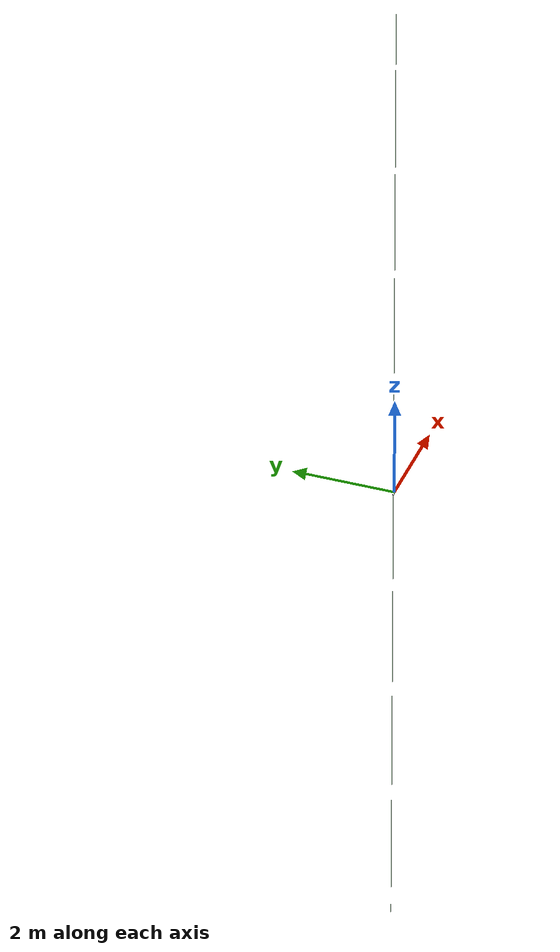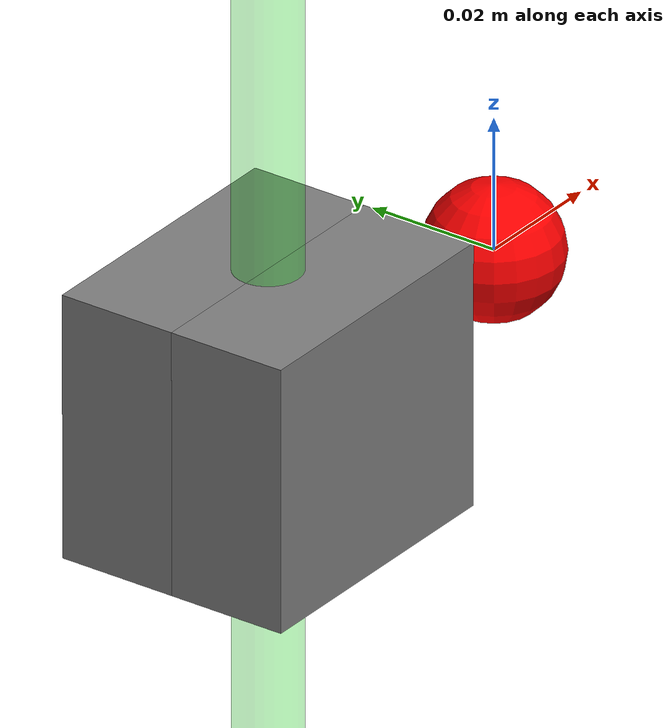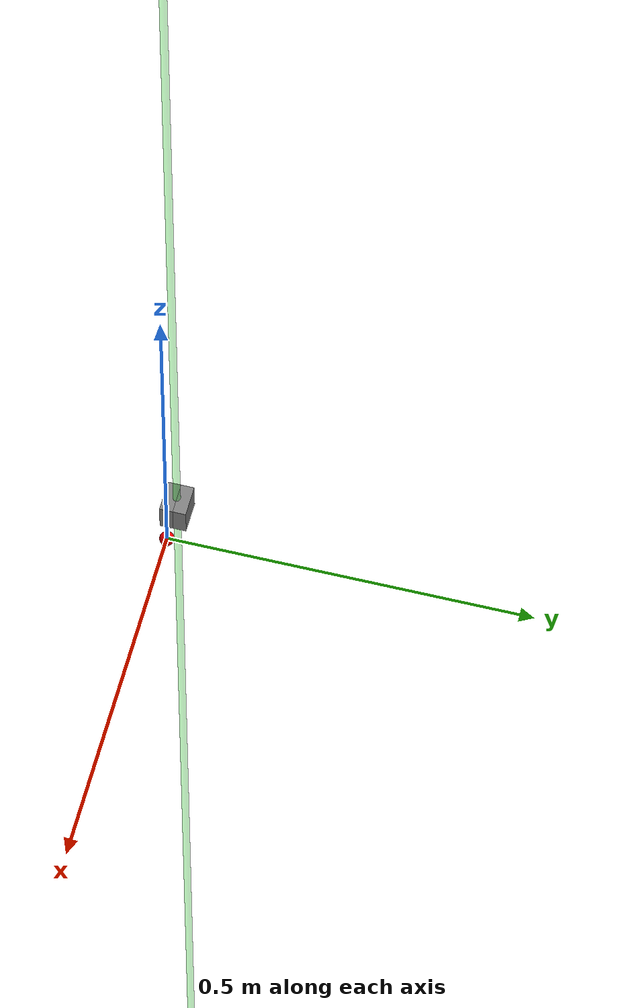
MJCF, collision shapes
<?xml version="1.0" ?>
<mujoco model="soarm_gripper">
    <asset>
        <mesh name="soarm_clamp_left" file="soarm_parallel/clamp_1_visual.stl" scale="0.001 0.001 0.001"/>
        <mesh name="soarm_clamp_right" file="soarm_parallel/clamp_2_visual.stl" scale="0.001 0.001 0.001"/>
        <mesh name="soarm_main_frame" file="soarm_parallel/main_frame_visual.stl" scale="0.001 0.001 0.001"/>
        <material name="soarm_frame_material" rgba="0.55 0.57 0.6 1"/>
        <material name="soarm_jaw_material" rgba="0.75 0.78 0.8 1"/>
    </asset>
    <actuator>
        <position ctrllimited="true" ctrlrange="0 0.042" joint="gripper_left" kp="1000" name="gripper_left" forcelimited="true" forcerange="-60 60"/>
        <position ctrllimited="true" ctrlrange="0 0.042" joint="gripper_right" kp="1000" name="gripper_right" forcelimited="true" forcerange="-60 60"/>
    </actuator>
    <worldbody>
        <body name="right_gripper" pos="0 0 0" quat="1 0 0 0">
            <site name="ft_frame" pos="0 0 0" size="0.01 0.01 0.01" rgba="1 0 0 1" type="sphere" group="1"/>
            <!-- Fixed Main frame visual (bolts to wrist, houses gear/racks). See asset note. -->
            <geom type="mesh" mesh="soarm_main_frame" material="soarm_frame_material" contype="0" conaffinity="0" group="1" pos="-0.015 -0.064 -0.02975" quat="0.5 0.5 0.5 0.5" name="main_frame_visual"/>
            <!-- Mount/base share of the assembly mass (~0.17 kg total; the two
                 jaws carry the rest). -->
            <inertial pos="0 0 -0.03" mass="0.07" diaginertia="6e-05 6e-05 4e-05"/>
            <body name="eef" pos="-0.052 -0.0002 0.0" quat="1 0 0 0">
                <site name="grip_site" pos="0 0 0" size="0.01 0.01 0.01" rgba="1 0 0 0.5" type="sphere" group="1"/>
                <site name="ee" pos="0 0 0" size="0.01 0.01 0.01" rgba="0 0 1 0" type="sphere" group="1"/>
                <site name="ee_x" pos="0.1 0 0" size="0.005 .1" quat="0.707105 0 0.707108 0" rgba="1 0 0 0" type="cylinder" group="1"/>
                <site name="ee_y" pos="0 0.1 0" size="0.005 .1" quat="0.707105 0.707108 0 0" rgba="0 1 0 0" type="cylinder" group="1"/>
                <site name="ee_z" pos="0 0 0.1" size="0.005 .1" quat="1 0 0 0" rgba="0 0 1 0" type="cylinder" group="1"/>
                <site name="grip_site_cylinder" pos="0 0 0" size="0.005 10" rgba="0 1 0 0.3" type="cylinder" group="1"/>
            </body>
            <!-- LEFT jaw: opens toward -y (axis 0 -1 0), range 0..0.042. -->
            <body name="gripper_left_jaw" pos="0 0 0" quat="1 0 0 0">
                <joint name="gripper_left" type="slide" axis="0 -1 0" limited="true" range="0 0.042" damping="50" armature="1.0" frictionloss="0.5"/>
                <inertial pos="-0.052 -0.0092 0" mass="0.05" diaginertia="4e-05 4e-05 1e-05"/>
                <geom type="mesh" mesh="soarm_clamp_left" material="soarm_jaw_material" contype="0" conaffinity="0" group="1" pos="0.15241 -0.02808 0.15206" quat="0 0.707107 0.707107 0" name="left_jaw_visual"/>
                <!-- box collision jaw (fingers point down, local -X): inner (+y) face at grip line y=-0.0002 -->
                <geom type="box" size="0.022 0.009 0.020" pos="-0.052 -0.0092 0" group="0" contype="1" conaffinity="1" condim="4" solref="0.01 1" friction="2 0.05 0.0001" name="left_jaw_collision"/>
            </body>
            <!-- RIGHT jaw: opens toward +y (axis 0 1 0), range 0..0.042. -->
            <body name="gripper_right_jaw" pos="0 0 0" quat="1 0 0 0">
                <joint name="gripper_right" type="slide" axis="0 1 0" limited="true" range="0 0.042" damping="50" armature="1.0" frictionloss="0.5"/>
                <inertial pos="-0.052 0.0088 0" mass="0.05" diaginertia="4e-05 4e-05 1e-05"/>
                <geom type="mesh" mesh="soarm_clamp_right" material="soarm_jaw_material" contype="0" conaffinity="0" group="1" pos="0.15242 0.01270 0.15171" quat="0 0.707107 0.707107 0" name="right_jaw_visual"/>
                <geom type="box" size="0.022 0.009 0.020" pos="-0.052 0.0088 0" group="0" contype="1" conaffinity="1" condim="4" solref="0.01 1" friction="2 0.05 0.0001" name="right_jaw_collision"/>
            </body>
        </body>
    </worldbody>
    <sensor>
        <force name="force_ee" site="ft_frame"/>
        <torque name="torque_ee" site="ft_frame"/>
    </sensor>
</mujoco>
